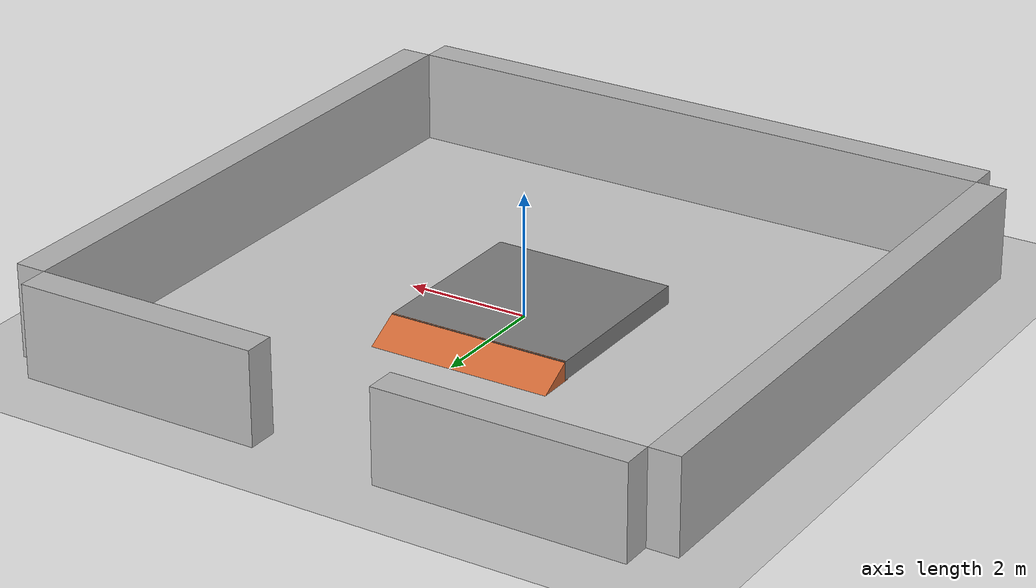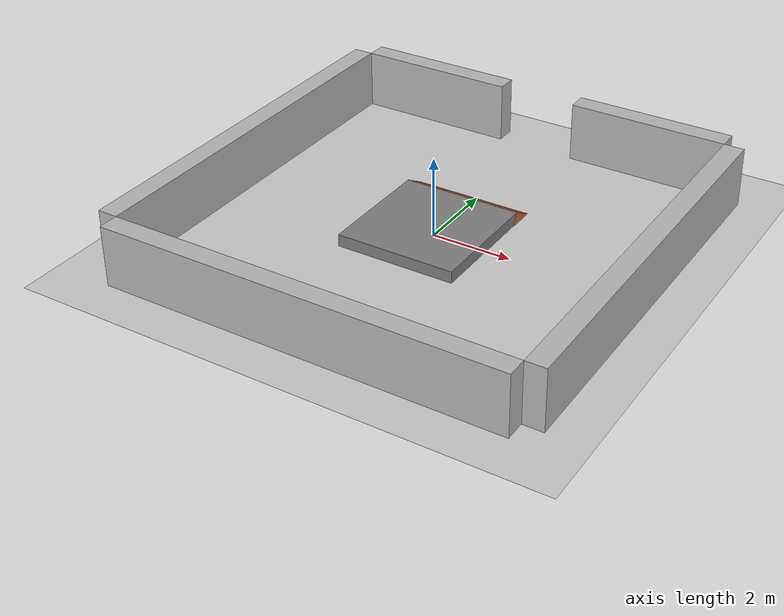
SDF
<sdf version="1.7">
 <world name="simple_arena">
  <model name="ground_plane">
   <static>1</static>
   <link name="link">
    <collision name="collision">
     <geometry><plane><normal>0 0 1</normal><size>100 100</size></plane></geometry>
     <surface><friction><ode><mu>100</mu><mu2>50</mu2></ode></friction></surface>
    </collision>
    <visual name="visual">
     <cast_shadows>0</cast_shadows>
     <geometry><plane><normal>0 0 1</normal><size>100 100</size></plane></geometry>
     <material>
      <script><uri>file://media/materials/scripts/gazebo.material</uri><name>Gazebo/Grey</name></script>
     </material>
    </visual>
   </link>
  </model>
  <light name="sun" type="directional">
   <pose>0 0 10 0 -0 0</pose>
   <diffuse>0.8 0.8 0.8 1</diffuse>
   <specular>0.2 0.2 0.2 1</specular>
   <attenuation>
    <range>1000</range>
    <constant>0.9</constant>
    <linear>0.01</linear>
    <quadratic>0.001</quadratic>
   </attenuation>
   <direction>-0.5 0.1 -0.9</direction>
   <spot><inner_angle>0</inner_angle><outer_angle>0</outer_angle><falloff>0</falloff></spot>
  </light>
  <model name="stage">
   <pose>-0.114082 -0.023785 0 0 -0 0</pose>
   <static>1</static>
   <link name="stage_link">
    <visual name="stage_visual">
     <geometry><box><size>3 3 0.3</size></box></geometry>
     <material><diffuse>0.5 0.5 0.5 1</diffuse></material>
    </visual>
    <collision name="stage_collision"><geometry><box><size>3 3 0.3</size></box></geometry></collision>
    <pose>0 0 0.15 0 -0 0</pose>
   </link>
  </model>
  <model name="ramp">
   <pose>-0.118397 4.13134 -0.348178 0 -0 1.57274</pose>
   <static>1</static>
   <link name="ramp_link">
    <visual name="ramp_visual">
     <geometry><box><size>1.5 3 0.3</size></box></geometry>
     <material><diffuse>0.8 0.4 0.2 1</diffuse></material>
    </visual>
    <collision name="ramp_collision"><geometry><box><size>1.5 3 0.3</size></box></geometry></collision>
    <pose>-2.1 0 0.15 0 0.52 0</pose>
   </link>
  </model>
  <model name="wall_back">
   <static>1</static>
   <link name="wall_link">
    <visual name="visual"><geometry><box><size>10 0.5 1.5</size></box></geometry></visual>
    <collision name="collision"><geometry><box><size>10 0.5 1.5</size></box></geometry></collision>
    <pose>0 -5.25 0.75 0 -0 0</pose>
   </link>
  </model>
  <model name="wall_left">
   <static>1</static>
   <link name="wall_link">
    <visual name="visual"><geometry><box><size>0.5 10 1.5</size></box></geometry></visual>
    <collision name="collision"><geometry><box><size>0.5 10 1.5</size></box></geometry></collision>
    <pose>-5.25 0 0.75 0 -0 0</pose>
   </link>
  </model>
  <model name="wall_right">
   <static>1</static>
   <link name="wall_link">
    <visual name="visual"><geometry><box><size>0.5 10 1.5</size></box></geometry></visual>
    <collision name="collision"><geometry><box><size>0.5 10 1.5</size></box></geometry></collision>
    <pose>5.25 0 0.75 0 -0 0</pose>
   </link>
  </model>
  <model name="wall_front_left">
   <static>1</static>
   <link name="wall_link">
    <visual name="visual"><geometry><box><size>4 0.5 1.5</size></box></geometry></visual>
    <collision name="collision"><geometry><box><size>4 0.5 1.5</size></box></geometry></collision>
    <pose>-3 5.25 0.75 0 -0 0</pose>
   </link>
  </model>
  <model name="wall_front_right">
   <static>1</static>
   <link name="wall_link">
    <visual name="visual"><geometry><box><size>4 0.5 1.5</size></box></geometry></visual>
    <collision name="collision"><geometry><box><size>4 0.5 1.5</size></box></geometry></collision>
    <pose>3 5.25 0.75 0 -0 0</pose>
   </link>
  </model>
  <gravity>0 0 -9.8</gravity>
  <magnetic_field>6e-06 2.3e-05 -4.2e-05</magnetic_field>
  <atmosphere type="adiabatic"/>
  <physics type="ode">
   <max_step_size>0.001</max_step_size>
   <real_time_factor>1</real_time_factor>
   <real_time_update_rate>1000</real_time_update_rate>
  </physics>
  <scene><ambient>0.4 0.4 0.4 1</ambient><background>0.7 0.7 0.7 1</background><shadows>1</shadows></scene>
  <audio><device>default</device></audio>
  <spherical_coordinates>
   <surface_model>EARTH_WGS84</surface_model>
   <latitude_deg>0</latitude_deg>
   <longitude_deg>0</longitude_deg>
   <elevation>0</elevation>
   <heading_deg>0</heading_deg>
  </spherical_coordinates>
 </world>
</sdf>
